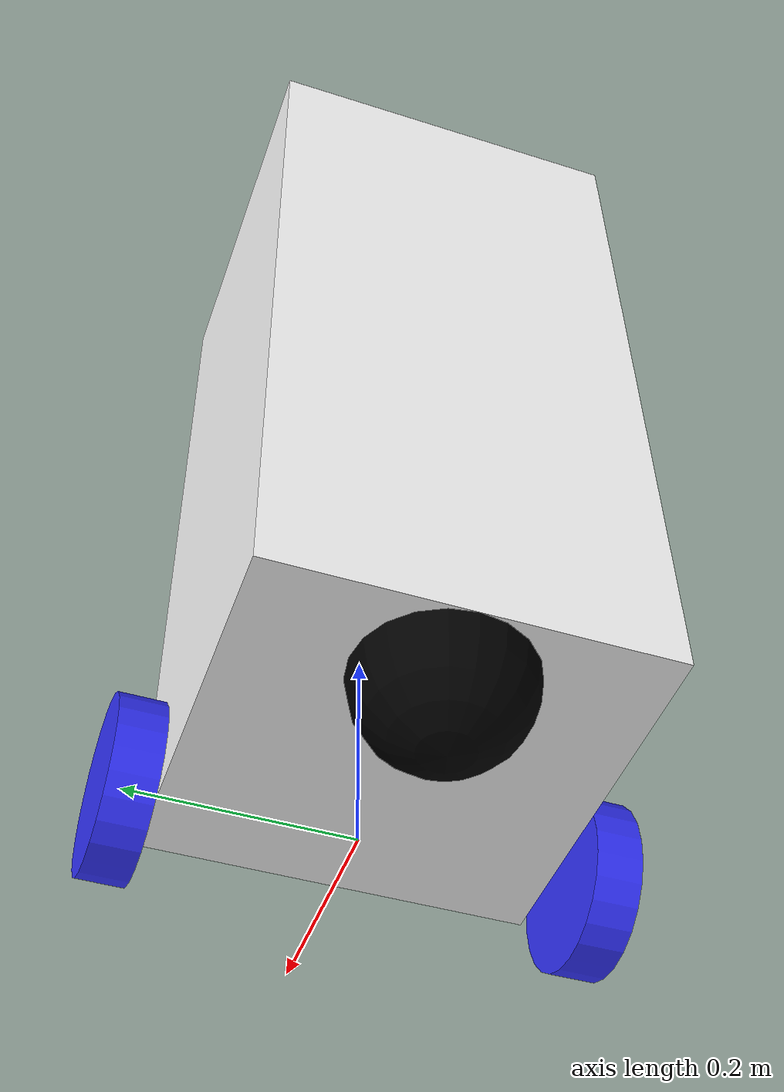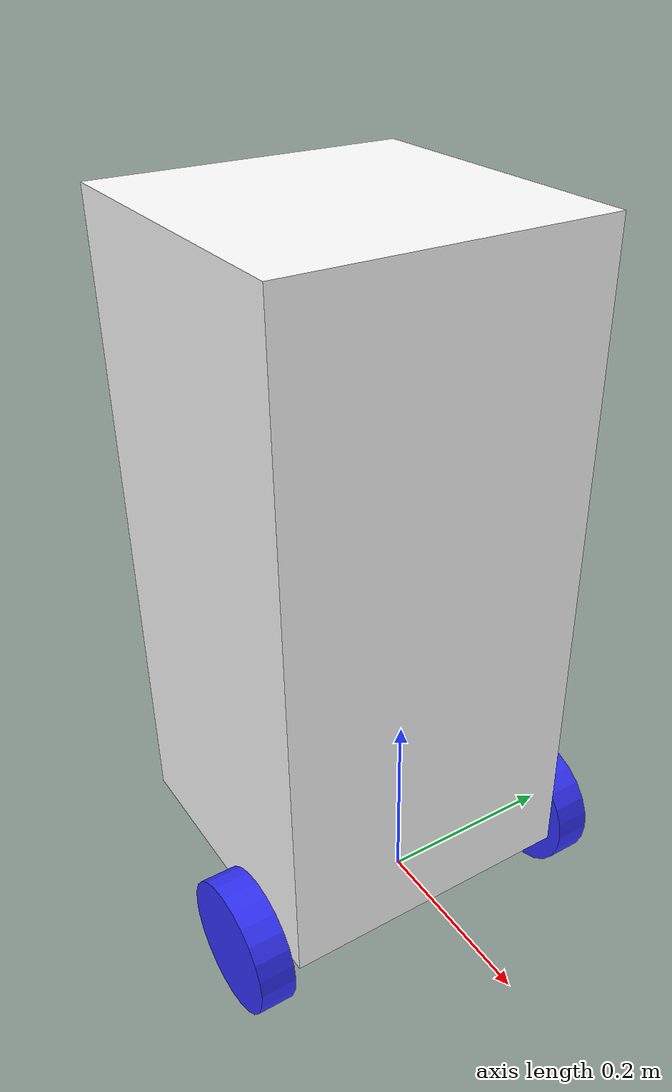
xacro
<?xml version="1.0"?>
<robot xmlns:xacro="http://www.ros.org/wiki/xacro" >

    <xacro:include filename="inertial_macros.xacro"/>

    <material name="white">
        <color rgba="1 1 1 1" />
    </material>

    <material name="orange">
        <color rgba="1 0.3 0.1 1"/>
    </material>

    <material name="blue">
        <color rgba="0.2 0.2 1 1"/>
    </material>

    <material name="black">
        <color rgba="0 0 0 1"/>
    </material>

    <material name="red">
        <color rgba="1 0 0 1"/>
    </material>

    <!-- BASE LINK -->

    <link name="base_link">

    </link>

    <!-- CHASSIS LINK -->

    <joint name="chassis_joint" type="fixed">
        <parent link="base_link"/>
        <child link="chassis"/>
        <origin xyz="-0.275 0 0"/>  <!-- origin behind base link -->
    </joint>

    <link name="chassis">
        <visual>  <!-- สร้างแบบจำลองที่เห็นในโปรแกรม -->
            <origin xyz="0.17 0 0.3625"/>  <!-- ตั้ง origin ใหม่ -->
            <geometry>
                <box size="0.34 0.34 0.725"/>  <!-- size in meter -->
            </geometry>
            <material name="white"/>  <!-- set color to white-->
        </visual>
        <collision>  <!-- สร้างแบบจำลองที่เห็นในโปรแกรม -->
            <origin xyz="0.17 0 0.1"/>  <!-- ตั้ง origin ใหม่ -->
            <geometry>
                <box size="0.34 0.34 0.2"/>  <!-- size in meter -->
            </geometry>
        </collision>
        <xacro:inertial_box mass="0.5" x="0.34" y="0.34" z="0.2">
            <origin xyz="0.17 0 0.1" rpy="0 0 0"/>
        </xacro:inertial_box>
    </link>

    <gazebo reference = "chassis">
        <material>Gazebo/White</material>
    </gazebo>

    <!-- LEFT WHEEL LINK -->

    <joint name="left_wheel_joint" type="continuous">
        <parent link="base_link"/>
        <child link="left_wheel"/>
        <origin xyz="0 0.2 0" rpy="-${pi/2} 0 0" />  <!-- rpy ใช้สั่งให้แกน origin หมุน-->
        <axis xyz="0 0 1"/>  <!-- ตั้งแกนในการเคลื่อนที่ของล้อเป็น +z -->
    </joint>
    <link name="left_wheel">
        <visual>
            <geometry>
                <cylinder radius="0.075" length="0.04"/>
            </geometry>
            <material name="blue"/>
        </visual>
        <collision>
            <geometry>
                <cylinder radius="0.075" length="0.04"/>
            </geometry>
        </collision>
        <xacro:inertial_cylinder mass="0.5" length="0.04" radius="0.15">
            <origin xzy="0 0 0" rpy="0 0 0"/>
        </xacro:inertial_cylinder>
    </link>

    <gazebo reference="left_wheel">
        <material>Gazebo/Blue</material>
    </gazebo>

    <!-- RIGHT WHEEL LINK -->

    <joint name="right_wheel_joint" type="continuous">
        <parent link="base_link"/>
        <child link="right_wheel"/>
        <origin xyz="0 -0.2 0" rpy="${pi/2} 0 0" />
        <axis xyz="0 0 -1"/>
    </joint>
    <link name="right_wheel">
        <visual>
            <geometry>
                <cylinder radius="0.075" length="0.04"/>
            </geometry>
            <material name="blue"/>
        </visual>
        <collision>
            <geometry>
                <cylinder radius="0.075" length="0.04"/>
            </geometry>
        </collision>
        <xacro:inertial_cylinder mass="0.5" length="0.04" radius="0.15">
            <origin xzy="0 0 0" rpy="0 0 0"/>
        </xacro:inertial_cylinder>
    </link>

    <gazebo reference="right_wheel">
        <material>Gazebo/Blue</material>
    </gazebo>

    <!-- CASTER WHEEL LINK -->

    <joint name="caster_wheel_joint" type="fixed">
        <parent link="chassis"/>
        <child link="caster_wheel"/>
        <origin xyz="0.075 0 0"/>
    </joint>

    <link name="caster_wheel">
        <visual>
            <geometry>
                <sphere radius="0.075"/>
            </geometry>
            <material name="black"/>
        </visual>
        <collision>
            <geometry>
                <sphere radius="0.075"/>
            </geometry>
        </collision>
        <xacro:inertial_sphere mass="0.5" radius="0.15">
            <origin xyz="0 0 0" rpy="0 0 0"/>
        </xacro:inertial_sphere>
    </link>

    <gazebo reference="caster_wheel">
        <material>Gazebo/Black</material>
        <mu1 value="0.001"/>
        <mu2 value="0.001"/>
    </gazebo>

</robot>
